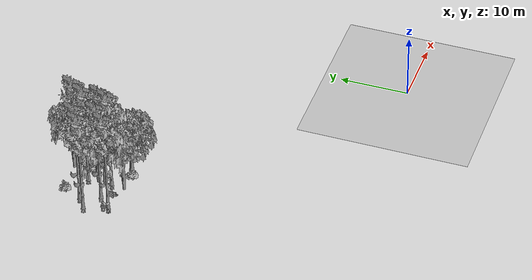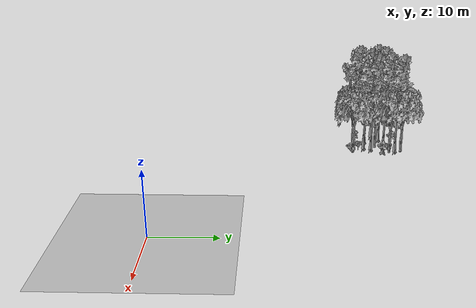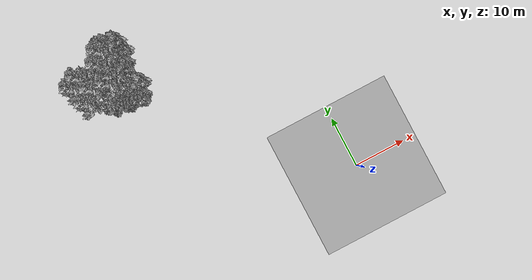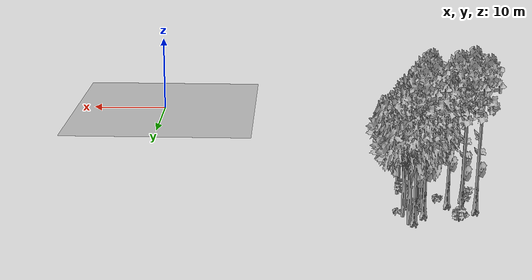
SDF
<sdf version="1.7">
 <world name="default">
  <model name="ground_plane">
   <static>1</static>
   <link name="link">
    <collision name="collision">
     <pose>-50 0 0 0 -0 0</pose>
     <geometry><plane><normal>0 0 1</normal><size>80 80</size></plane></geometry>
     <surface><contact><ode><min_depth>0.01</min_depth><max_vel>0</max_vel></ode></contact></surface>
    </collision>
    <visual name="grass">
     <cast_shadows>0</cast_shadows>
     <geometry>
      <mesh>
       <scale>0.46714285714285714 0.46714285714285714 0.1</scale>
       <uri>file://grass_plane/meshes/grass_plane.dae</uri>
      </mesh>
     </geometry>
    </visual>
   </link>
  </model>
  <model name="Tree 69">
   <static>1</static>
   <pose>-30.32523811274617 39.50828090563729 0 1.57079 -0 0</pose>
   <link name="link">
    <collision name="collision">
     <geometry><mesh><scale>3.5 5 3.5</scale><uri>model://tree_2/meshes/tree_2.obj</uri></mesh></geometry>
    </collision>
    <visual name="visual">
     <geometry><mesh><scale>3.5 5 3.5</scale><uri>model://tree_2/meshes/tree_2.obj</uri></mesh></geometry>
    </visual>
   </link>
  </model>
  <model name="Tree 189">
   <static>1</static>
   <pose>-31.54893523743434 34.44045420325068 0 1.57079 -0 0</pose>
   <link name="link">
    <collision name="collision">
     <geometry><mesh><scale>3.5 5 3.5</scale><uri>model://tree_9/meshes/tree_9.obj</uri></mesh></geometry>
    </collision>
    <visual name="visual">
     <geometry><mesh><scale>3.5 5 3.5</scale><uri>model://tree_9/meshes/tree_9.obj</uri></mesh></geometry>
    </visual>
   </link>
  </model>
  <model name="Tree 194">
   <static>1</static>
   <pose>-32.17657899361291 35.190905296764385 0 1.57079 -0 0</pose>
   <link name="link">
    <collision name="collision">
     <geometry><mesh><scale>3.5 5 3.5</scale><uri>model://tree_2/meshes/tree_2.obj</uri></mesh></geometry>
    </collision>
    <visual name="visual">
     <geometry><mesh><scale>3.5 5 3.5</scale><uri>model://tree_2/meshes/tree_2.obj</uri></mesh></geometry>
    </visual>
   </link>
  </model>
  <model name="Tree 215">
   <static>1</static>
   <pose>-32.117935299614054 36.714420784352114 0 1.57079 -0 0</pose>
   <link name="link">
    <collision name="collision">
     <geometry><mesh><scale>3.5 5 3.5</scale><uri>model://tree_9/meshes/tree_9.obj</uri></mesh></geometry>
    </collision>
    <visual name="visual">
     <geometry><mesh><scale>3.5 5 3.5</scale><uri>model://tree_9/meshes/tree_9.obj</uri></mesh></geometry>
    </visual>
   </link>
  </model>
  <model name="Tree 217">
   <static>1</static>
   <pose>-36.10950413777324 36.41195225990546 0 1.57079 -0 0</pose>
   <link name="link">
    <collision name="collision">
     <geometry><mesh><scale>3.5 5 3.5</scale><uri>model://tree_9/meshes/tree_9.obj</uri></mesh></geometry>
    </collision>
    <visual name="visual">
     <geometry><mesh><scale>3.5 5 3.5</scale><uri>model://tree_9/meshes/tree_9.obj</uri></mesh></geometry>
    </visual>
   </link>
  </model>
  <model name="Tree 365">
   <static>1</static>
   <pose>-35.00411457941796 33.688611354867064 0 1.57079 -0 0</pose>
   <link name="link">
    <collision name="collision">
     <geometry><mesh><scale>3.5 5 3.5</scale><uri>model://tree_9/meshes/tree_9.obj</uri></mesh></geometry>
    </collision>
    <visual name="visual">
     <geometry><mesh><scale>3.5 5 3.5</scale><uri>model://tree_9/meshes/tree_9.obj</uri></mesh></geometry>
    </visual>
   </link>
  </model>
  <model name="Tree 433">
   <static>1</static>
   <pose>-32.13220046594881 33.21748901976267 0 1.57079 -0 0</pose>
   <link name="link">
    <collision name="collision">
     <geometry><mesh><scale>3.5 5 3.5</scale><uri>model://tree_9/meshes/tree_9.obj</uri></mesh></geometry>
    </collision>
    <visual name="visual">
     <geometry><mesh><scale>3.5 5 3.5</scale><uri>model://tree_9/meshes/tree_9.obj</uri></mesh></geometry>
    </visual>
   </link>
  </model>
  <model name="Tree 435">
   <static>1</static>
   <pose>-37.831407167132376 35.237037387062756 0 1.57079 -0 0</pose>
   <link name="link">
    <collision name="collision">
     <geometry><mesh><scale>3.5 5 3.5</scale><uri>model://tree_9/meshes/tree_9.obj</uri></mesh></geometry>
    </collision>
    <visual name="visual">
     <geometry><mesh><scale>3.5 5 3.5</scale><uri>model://tree_9/meshes/tree_9.obj</uri></mesh></geometry>
    </visual>
   </link>
  </model>
  <model name="Tree 441">
   <static>1</static>
   <pose>-29.87831239489416 31.04586392247471 0 1.57079 -0 0</pose>
   <link name="link">
    <collision name="collision">
     <geometry><mesh><scale>3.5 5 3.5</scale><uri>model://tree_2/meshes/tree_2.obj</uri></mesh></geometry>
    </collision>
    <visual name="visual">
     <geometry><mesh><scale>3.5 5 3.5</scale><uri>model://tree_2/meshes/tree_2.obj</uri></mesh></geometry>
    </visual>
   </link>
  </model>
  <model name="Tree 457">
   <static>1</static>
   <pose>-36.844167377293324 31.909116188512897 0 1.57079 -0 0</pose>
   <link name="link">
    <collision name="collision">
     <geometry><mesh><scale>3.5 5 3.5</scale><uri>model://tree_9/meshes/tree_9.obj</uri></mesh></geometry>
    </collision>
    <visual name="visual">
     <geometry><mesh><scale>3.5 5 3.5</scale><uri>model://tree_9/meshes/tree_9.obj</uri></mesh></geometry>
    </visual>
   </link>
  </model>
  <model name="Tree 483">
   <static>1</static>
   <pose>-32.50151950481692 31.25135393427678 0 1.57079 -0 0</pose>
   <link name="link">
    <collision name="collision">
     <geometry><mesh><scale>3.5 5 3.5</scale><uri>model://tree_2/meshes/tree_2.obj</uri></mesh></geometry>
    </collision>
    <visual name="visual">
     <geometry><mesh><scale>3.5 5 3.5</scale><uri>model://tree_2/meshes/tree_2.obj</uri></mesh></geometry>
    </visual>
   </link>
  </model>
  <model name="Tree 489">
   <static>1</static>
   <pose>-30.91450087676046 38.6067359720648 0 1.57079 -0 0</pose>
   <link name="link">
    <collision name="collision">
     <geometry><mesh><scale>3.5 5 3.5</scale><uri>model://tree_9/meshes/tree_9.obj</uri></mesh></geometry>
    </collision>
    <visual name="visual">
     <geometry><mesh><scale>3.5 5 3.5</scale><uri>model://tree_9/meshes/tree_9.obj</uri></mesh></geometry>
    </visual>
   </link>
  </model>
  <model name="Tree 598">
   <static>1</static>
   <pose>-29.912752340181083 37.45141682384815 0 1.57079 -0 0</pose>
   <link name="link">
    <collision name="collision">
     <geometry><mesh><scale>3.5 5 3.5</scale><uri>model://tree_2/meshes/tree_2.obj</uri></mesh></geometry>
    </collision>
    <visual name="visual">
     <geometry><mesh><scale>3.5 5 3.5</scale><uri>model://tree_2/meshes/tree_2.obj</uri></mesh></geometry>
    </visual>
   </link>
  </model>
  <model name="Bush 138">
   <static>1</static>
   <pose>-29.384292398311565 36.21828834162413 0 1.57079 -0 0</pose>
   <link name="link">
    <collision name="collision">
     <geometry><mesh><scale>2 2 2</scale><uri>model://bush_2/meshes/bush_2.obj</uri></mesh></geometry>
     <surface><contact><collide_without_contact>false</collide_without_contact></contact></surface>
    </collision>
    <visual name="visual">
     <geometry><mesh><scale>2 2 2</scale><uri>model://bush_2/meshes/bush_2.obj</uri></mesh></geometry>
    </visual>
   </link>
  </model>
  <model name="Bush 232">
   <static>1</static>
   <pose>-34.0165385119166 32.66765562357463 0 1.57079 -0 0</pose>
   <link name="link">
    <collision name="collision">
     <geometry><mesh><scale>2 2 2</scale><uri>model://bush_2/meshes/bush_2.obj</uri></mesh></geometry>
     <surface><contact><collide_without_contact>false</collide_without_contact></contact></surface>
    </collision>
    <visual name="visual">
     <geometry><mesh><scale>2 2 2</scale><uri>model://bush_2/meshes/bush_2.obj</uri></mesh></geometry>
    </visual>
   </link>
  </model>
  <model name="Bush 274">
   <static>1</static>
   <pose>-37.21471612017933 32.33864688230388 0 1.57079 -0 0</pose>
   <link name="link">
    <collision name="collision">
     <geometry><mesh><scale>2 2 2</scale><uri>model://bush_0/meshes/bush_0.obj</uri></mesh></geometry>
     <surface><contact><collide_without_contact>false</collide_without_contact></contact></surface>
    </collision>
    <visual name="visual">
     <geometry><mesh><scale>2 2 2</scale><uri>model://bush_0/meshes/bush_0.obj</uri></mesh></geometry>
    </visual>
   </link>
  </model>
  <model name="Bush 395">
   <static>1</static>
   <pose>-30.864295683475717 32.10430683057946 0 1.57079 -0 0</pose>
   <link name="link">
    <collision name="collision">
     <geometry><mesh><scale>2 2 2</scale><uri>model://bush_5/meshes/bush_5.obj</uri></mesh></geometry>
     <surface><contact><collide_without_contact>false</collide_without_contact></contact></surface>
    </collision>
    <visual name="visual">
     <geometry><mesh><scale>2 2 2</scale><uri>model://bush_5/meshes/bush_5.obj</uri></mesh></geometry>
    </visual>
   </link>
  </model>
  <model name="Bush 466">
   <static>1</static>
   <pose>-34.115689674719405 32.104633194229365 0 1.57079 -0 0</pose>
   <link name="link">
    <collision name="collision">
     <geometry><mesh><scale>2 2 2</scale><uri>model://bush_2/meshes/bush_2.obj</uri></mesh></geometry>
     <surface><contact><collide_without_contact>false</collide_without_contact></contact></surface>
    </collision>
    <visual name="visual">
     <geometry><mesh><scale>2 2 2</scale><uri>model://bush_2/meshes/bush_2.obj</uri></mesh></geometry>
    </visual>
   </link>
  </model>
  <model name="Bush 480">
   <static>1</static>
   <pose>-37.17515677606116 32.302092408560924 0 1.57079 -0 0</pose>
   <link name="link">
    <collision name="collision">
     <geometry><mesh><scale>2 2 2</scale><uri>model://bush_2/meshes/bush_2.obj</uri></mesh></geometry>
     <surface><contact><collide_without_contact>false</collide_without_contact></contact></surface>
    </collision>
    <visual name="visual">
     <geometry><mesh><scale>2 2 2</scale><uri>model://bush_2/meshes/bush_2.obj</uri></mesh></geometry>
    </visual>
   </link>
  </model>
  <model name="Bush 553">
   <static>1</static>
   <pose>-30.277631114323636 30.715534616591214 0 1.57079 -0 0</pose>
   <link name="link">
    <collision name="collision">
     <geometry><mesh><scale>2 2 2</scale><uri>model://bush_1/meshes/bush_1.obj</uri></mesh></geometry>
     <surface><contact><collide_without_contact>false</collide_without_contact></contact></surface>
    </collision>
    <visual name="visual">
     <geometry><mesh><scale>2 2 2</scale><uri>model://bush_1/meshes/bush_1.obj</uri></mesh></geometry>
    </visual>
   </link>
  </model>
  <model name="Bush 554">
   <static>1</static>
   <pose>-30.548021251393983 36.26777942963804 0 1.57079 -0 0</pose>
   <link name="link">
    <collision name="collision">
     <geometry><mesh><scale>2 2 2</scale><uri>model://bush_1/meshes/bush_1.obj</uri></mesh></geometry>
     <surface><contact><collide_without_contact>false</collide_without_contact></contact></surface>
    </collision>
    <visual name="visual">
     <geometry><mesh><scale>2 2 2</scale><uri>model://bush_1/meshes/bush_1.obj</uri></mesh></geometry>
    </visual>
   </link>
  </model>
  <model name="Bush 567">
   <static>1</static>
   <pose>-30.99983427459137 37.49752644215734 0 1.57079 -0 0</pose>
   <link name="link">
    <collision name="collision">
     <geometry><mesh><scale>2 2 2</scale><uri>model://bush_4/meshes/bush_4.obj</uri></mesh></geometry>
     <surface><contact><collide_without_contact>false</collide_without_contact></contact></surface>
    </collision>
    <visual name="visual">
     <geometry><mesh><scale>2 2 2</scale><uri>model://bush_4/meshes/bush_4.obj</uri></mesh></geometry>
    </visual>
   </link>
  </model>
  <model name="Bush 623">
   <static>1</static>
   <pose>-35.58749381386368 38.6338772654541 0 1.57079 -0 0</pose>
   <link name="link">
    <collision name="collision">
     <geometry><mesh><scale>2 2 2</scale><uri>model://bush_1/meshes/bush_1.obj</uri></mesh></geometry>
     <surface><contact><collide_without_contact>false</collide_without_contact></contact></surface>
    </collision>
    <visual name="visual">
     <geometry><mesh><scale>2 2 2</scale><uri>model://bush_1/meshes/bush_1.obj</uri></mesh></geometry>
    </visual>
   </link>
  </model>
 </world>
</sdf>
